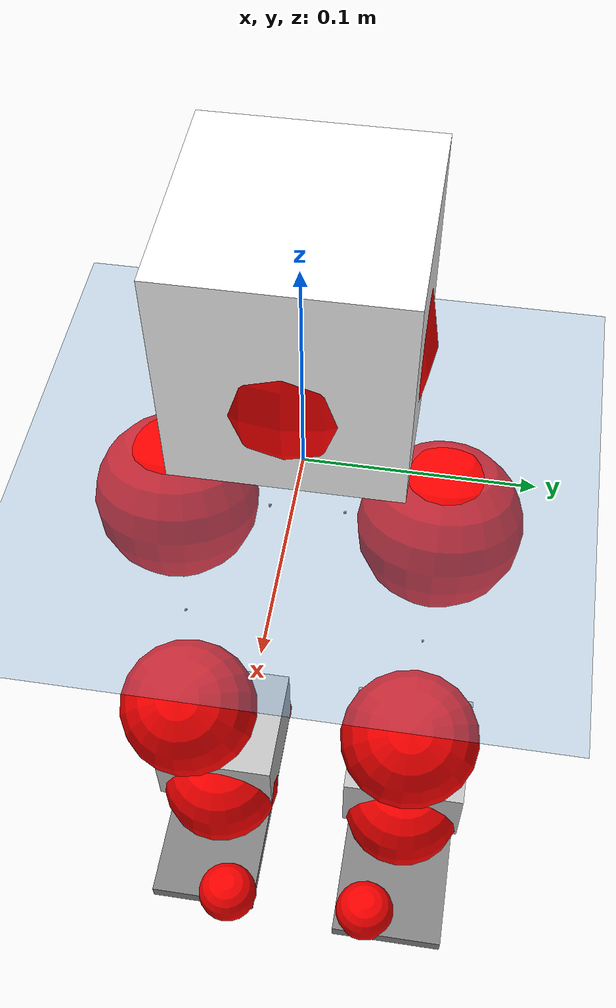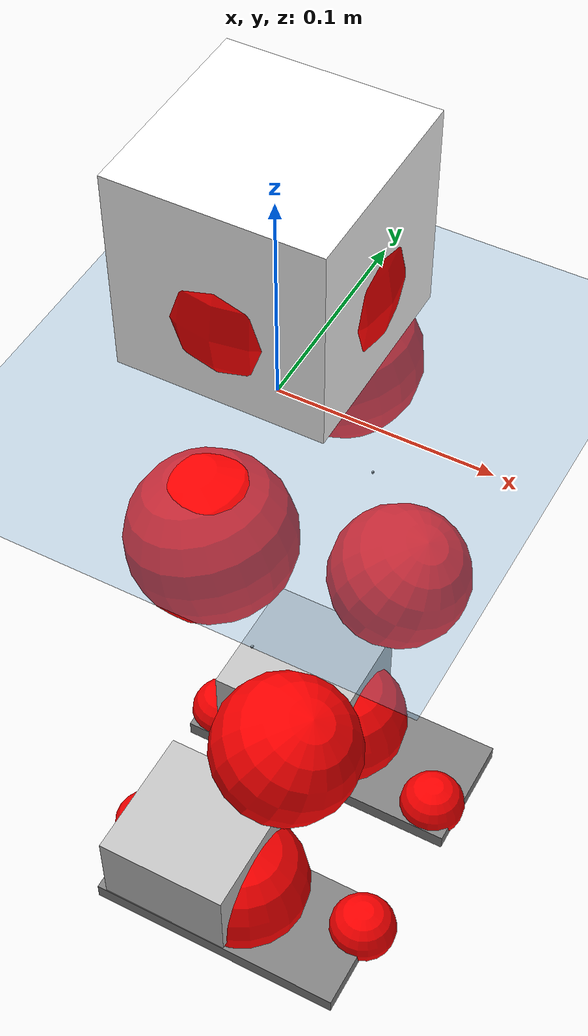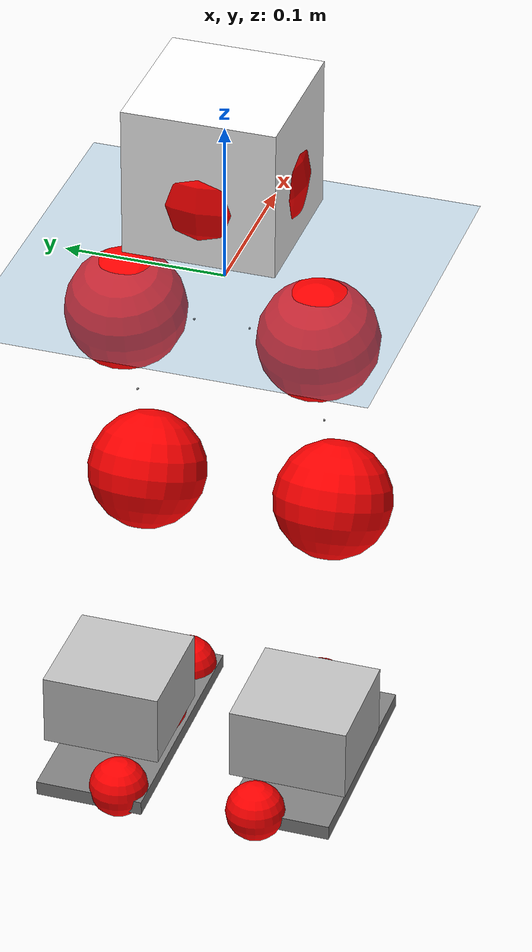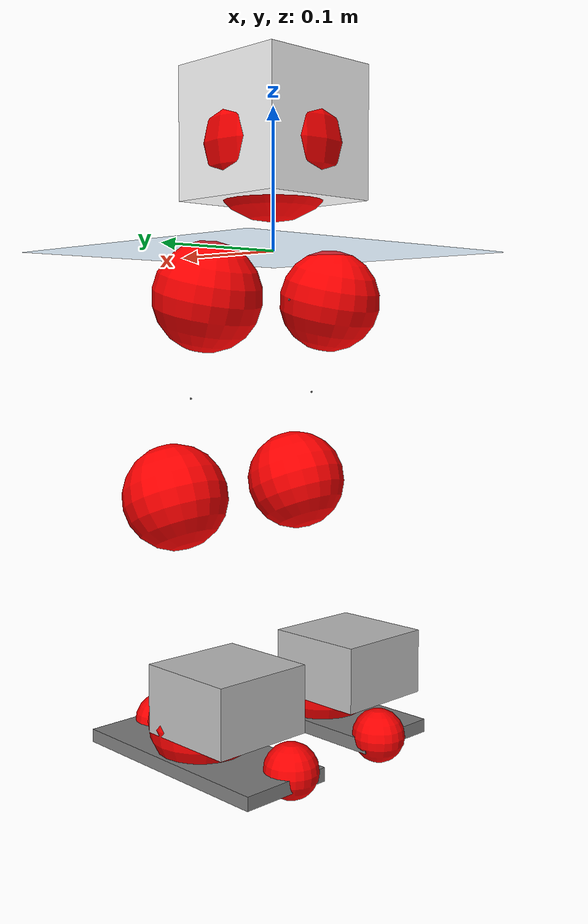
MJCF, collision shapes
<mujoco model="pi_12dof_release_v1">
  <compiler angle="radian" assetdir="assets" balanceinertia="true" inertiafromgeom="false"/>

  <option timestep="0.005" density="1.2" viscosity="2e-05"/>

  <size nkey="1"/>

  <visual>
    <quality shadowsize="8192"/>
    <map shadowclip="0.5"/>
  </visual>

  <default>
    <default class="/">
      <joint armature="0.01" damping="0.01" frictionloss="0.01"/>
      <geom contype="0" conaffinity="0" group="1" solref="-1000 -80"/>
      <site size="0.01 0.005 0.005" group="5"/>
      <general forcelimited="true" biastype="affine" gainprm="20" biasprm="0 -20 -0.5"/>
      <default class="foot">
        <geom size="0.0845 0.036 0.005" type="box" condim="6" group="4" priority="1" friction="0.9 0.2 0.2" solimp="0.015 1 0.005"/>
      </default>
      <default class="reward_collision_sphere">
        <geom group="5" rgba="1 0 0 1"/>
      </default>
    </default>
  </default>

  <asset>
    <texture type="skybox" colorspace="auto" name="//unnamed_texture_0" builtin="gradient" rgb1="0.95 0.95 0.95" rgb2="0.95 0.95 0.95" width="100" height="600"/>
    <texture type="2d" colorspace="auto" name="texplane" builtin="checker" rgb1="0.345 0.575 0.748" rgb2="0.345 0.575 0.748" markrgb="1 1 1" width="512" height="512"/>
    <material name="MatPlane" class="/" texture="texplane" texuniform="true" texrepeat="2 2" specular="0.9"/>
    <mesh name="baselink_1" class="/" file="baselink_1.STL"/>
    <mesh name="r_hip_pitch_link" class="/" file="r_hip_pitch_link.STL"/>
    <mesh name="r_hip_roll_link" class="/" file="r_hip_roll_link.STL"/>
    <mesh name="r_thigh_link" class="/" file="r_thigh_link.STL"/>
    <mesh name="r_calf_link" class="/" file="r_calf_link.STL"/>
    <mesh name="r_ankle_pitch_link" class="/" file="r_ankle_pitch_link.STL"/>
    <mesh name="r_ankle_roll_link" class="/" file="r_ankle_roll_link.STL"/>
    <mesh name="l_hip_pitch_link" class="/" file="l_hip_pitch_link.STL"/>
    <mesh name="l_hip_roll_link" class="/" file="l_hip_roll_link.STL"/>
    <mesh name="l_thigh_link" class="/" file="l_thigh_link.STL"/>
    <mesh name="l_calf_link" class="/" file="l_calf_link.STL"/>
    <mesh name="l_ankle_pitch_link" class="/" file="l_ankle_pitch_link.STL"/>
    <mesh name="l_ankle_roll_link" class="/" file="l_ankle_roll_link.STL"/>
  </asset>

  <worldbody>
    <geom name="floor" class="/" size="100 100 0.125" type="plane" group="0" material="MatPlane"/>
    <light name="toplight_shadow" class="/" pos="0 0 5" dir="0.0990148 0.0990148 -0.990148" type="directional" ambient="0.04 0.04 0.04" diffuse="0.55 0.55 0.55" specular="0.12 0.12 0.12"/>
    <light name="toplight_fill" class="/" pos="0 0 5" dir="0.0990148 0.0990148 -0.990148" type="directional" castshadow="false" ambient="0.04 0.04 0.04" diffuse="0.3 0.3 0.3" specular="0.08 0.08 0.08"/>
    <body name="trunk" pos="-0.000694832 0.000783755 0.000347841" quat="1 6.72356e-05 9.86594e-05 0.000115652">
      <inertial pos="0.00134546 -0.000534721 0.0408567" quat="0.694259 0.0098625 0.00976321 0.719592" mass="1.76927" diaginertia="0.0103825 0.00259158 0.00444705"/>
      <joint name="//unnamed_joint_0" type="free"/>
      <geom name="//unnamed_geom_1" class="/" type="mesh" density="0" rgba="1 1 1 1" mesh="baselink_1"/>
      <geom name="//unnamed_geom_2" class="/" size="0.0467826 0.0467826 0.0467826" pos="0 0 0.0810873" type="box" rgba="1 1 1 1"/>
      <geom name="//unnamed_geom_3" class="reward_collision_sphere" size="0.0514609" pos="0 0 0.0709514"/>
      <site name="imu" class="/" pos="-0.000227352 -0.000957168 -0.00163314" size="0.00935652"/>
      <camera name="track" class="/" pos="0 -1.56039 0" quat="0.707107 0.707107 0 0" mode="trackcom"/>
      <camera name="ego_camera" class="/" pos="0.0759876 0 0.182446" quat="-0.5 -0.5 0.5 0.5"/>
      <body name="r_hip_pitch_link" pos="0.000561458 -0.0164613 -0.0341231" quat="0.992216 0.000121171 -0.124529 -8.12454e-05">
        <inertial pos="5.50514e-05 -0.0429733 0.000809847" quat="-0.0188482 0.704915 -0.0287091 0.70846" mass="0.302478" diaginertia="0.000115377 2.82012e-05 8.79121e-05"/>
        <joint name="r_hip_pitch_joint" class="/" pos="0 0 0" axis="-0.002067 -0.999977 -0.00648391" range="-1.74883 1.25132" armature="0.00931412" damping="0.0141317" frictionloss="0.00900827"/>
        <geom name="//unnamed_geom_4" class="/" type="mesh" density="0" rgba="0.75294 0.75294 0.75294 1" mesh="r_hip_pitch_link"/>
        <geom name="//unnamed_geom_5" class="/" size="0.000467826 0.000467826 0.000467826" type="box" rgba="0.75294 0.75294 0.75294 1"/>
        <body name="r_hip_roll_link" pos="0.00058551 -0.0427762 -0.000113615" quat="1 2.37699e-06 -5.51351e-06 4.06896e-06">
          <inertial pos="-0.000215689 -0.000292066 -0.0625352" quat="0.70694 -0.07917 -0.0820119 0.698027" mass="0.316745" diaginertia="0.000357737 8.08018e-05 0.000138014"/>
          <joint name="r_hip_roll_joint" class="/" pos="0 0 0" axis="-1 -0.000311252 -0.000224255" range="-0.115199 0.481768" armature="0.00920536" damping="0.00767871" frictionloss="0.00929271"/>
          <geom name="//unnamed_geom_6" class="/" type="mesh" density="0" rgba="0.75294 0.75294 0.75294 1" mesh="r_hip_roll_link"/>
          <geom name="//unnamed_geom_7" class="/" size="0.000467826 0.000467826 0.000467826" type="box" rgba="0.75294 0.75294 0.75294 1"/>
          <geom name="//unnamed_geom_8" class="reward_collision_sphere" size="0.0374261"/>
          <body name="r_thigh_link" pos="-5.64959e-05 0.000921854 -0.0700437" quat="1 -0.000236301 0.000447386 -6.80176e-05">
            <inertial pos="-0.000410859 0.000327086 -0.0476117" quat="0.737527 0.675317 0.000141435 -0.000261806" mass="0.0926441" diaginertia="0.000133349 2.70819e-05 6.26397e-05"/>
            <joint name="r_thigh_joint" class="/" pos="0 0 0" axis="0.00199937 0.00411425 -0.99999" range="-0.303642 0.57457" armature="0.00933266" damping="0.00298503" frictionloss="0.00950436"/>
            <geom name="//unnamed_geom_9" class="/" type="mesh" density="0" rgba="0.75294 0.75294 0.75294 1" mesh="r_thigh_link"/>
            <geom name="//unnamed_geom_10" class="/" size="0.000467826 0.000467826 0.000467826" type="box" rgba="0.75294 0.75294 0.75294 1"/>
            <body name="r_calf_link" pos="3.45374e-05 -0.00106553 -0.0707561" quat="0.947565 6.38398e-05 0.319562 -8.7517e-05">
              <inertial pos="-0.000892678 -0.000532943 -0.0708798" quat="0.999986 -0.00372333 -0.000536822 0.00368869" mass="0.671597" diaginertia="0.00370538 0.00099521 0.000186979"/>
              <joint name="r_calf_joint" class="/" pos="0 0 0" axis="-0.00132751 -0.999999 -4.06981e-05" range="-1.64542 0.64773" armature="0.00993297" damping="0" frictionloss="0.0098518"/>
              <geom name="//unnamed_geom_11" class="/" type="mesh" density="0" rgba="0.75294 0.75294 0.75294 1" mesh="r_calf_link"/>
              <geom name="//unnamed_geom_12" class="/" size="0.000467826 0.000467826 0.000467826" type="box" rgba="0.75294 0.75294 0.75294 1"/>
              <geom name="//unnamed_geom_13" class="reward_collision_sphere" size="0.0374261"/>
              <body name="r_ankle_pitch_link" pos="0.000697942 -0.00025152 -0.142052" quat="0.980121 -0.000267519 -0.198399 2.1374e-05">
                <inertial pos="0.0055924 0.00172052 -0.000471161" quat="0.00157481 0.70645 -0.0026564 0.707756" mass="0.142465" diaginertia="0.000329821 6.47268e-05 0.000129062"/>
                <joint name="r_ankle_pitch_joint" class="/" pos="0 0 0" axis="-0.00266908 -0.999979 0.0059695" range="-1.29085 0.491613" armature="0.0091123" damping="0.00843588" frictionloss="0.00974598"/>
                <geom name="//unnamed_geom_14" class="/" type="mesh" density="0" rgba="0.75294 0.75294 0.75294 1" mesh="r_ankle_pitch_link"/>
                <geom name="//unnamed_geom_15" class="/" size="0.0364904 0.0374261 0.0233913" type="box" rgba="0.75294 0.75294 0.75294 1"/>
                <body name="r_ankle_roll_link" pos="0.0765709 0.00192045 -0.000142733" quat="1 0.000122192 2.34303e-05 2.56502e-05">
                  <inertial pos="-0.0254009 0.000150926 -0.0150817" quat="0.55982 0.431797 0.433858 0.558498" mass="0.425366" diaginertia="0.00120293 0.000299826 0.000301081"/>
                  <joint name="r_ankle_roll_joint" class="/" pos="0 0 0" axis="-0.999966 -0.00609579 0.00555172" range="-0.14779 0.155571" armature="0.00961292" damping="0.00813725" frictionloss="0.00943925"/>
                  <geom name="//unnamed_geom_16" class="/" type="mesh" density="0" rgba="0.75294 0.75294 0.75294 1" mesh="r_ankle_roll_link"/>
                  <geom name="//unnamed_geom_17" class="/" type="mesh" rgba="0.75294 0.75294 0.75294 1" mesh="r_ankle_roll_link"/>
                  <geom name="right_foot" class="foot" size="0.0727385 0.0326989 0.00473295" pos="-0.0516716 0 -0.044598"/>
                  <geom name="//unnamed_geom_19" class="reward_collision_sphere" size="0.0374261" pos="-0.0506584 0 -0.0202718"/>
                  <geom name="//unnamed_geom_20" class="reward_collision_sphere" size="0.018713" pos="0.0151975 0.0156039 -0.0405437"/>
                  <geom name="//unnamed_geom_21" class="reward_collision_sphere" size="0.018713" pos="-0.12158 0.0156039 -0.0405437"/>
                  <site name="right_foot" class="foot" pos="-0.0516716 0 -0.044598" size="0.00935652"/>
                </body>
              </body>
            </body>
          </body>
        </body>
      </body>
      <body name="l_hip_pitch_link" pos="-0.000359898 0.0180043 -0.0337435" quat="0.992213 -0.000453824 -0.124551 0.000616003">
        <inertial pos="0.00156227 0.041609 -0.000350714" quat="-0.038341 0.705647 0.0294726 0.706911" mass="0.32" diaginertia="0.000136482 3.00187e-05 0.000106833"/>
        <joint name="l_hip_pitch_joint" class="/" pos="0 0 0" axis="4.99151e-05 1 2.80788e-05" stiffness="0.00213857" range="-1.26578 1.74841" armature="0.00910649" damping="0.00564165" frictionloss="0.00911974"/>
        <geom name="//unnamed_geom_22" class="/" type="mesh" density="0" rgba="0.75294 0.75294 0.75294 1" mesh="l_hip_pitch_link"/>
        <geom name="//unnamed_geom_23" class="/" size="0.000467826 0.000467826 0.000467826" type="box" rgba="0.75294 0.75294 0.75294 1"/>
        <body name="l_hip_roll_link" pos="0.000146144 0.043108 -0.000414774" quat="1 -2.04614e-05 -0.000192422 0.000104845">
          <inertial pos="-0.00134959 -4.66321e-05 -0.0625794" quat="0.699124 -0.0754296 -0.0779341 0.706726" mass="0.318999" diaginertia="0.000356979 8.0729e-05 0.000137489"/>
          <joint name="l_hip_roll_joint" class="/" pos="0 0 0" axis="-0.999994 -0.00338401 0.00105181" range="-0.503043 0.124566" armature="0.0090388" damping="0" frictionloss="0.00898461"/>
          <geom name="//unnamed_geom_24" class="/" type="mesh" density="0" rgba="0.75294 0.75294 0.75294 1" mesh="l_hip_roll_link"/>
          <geom name="//unnamed_geom_25" class="/" size="0.000467826 0.000467826 0.000467826" type="box" rgba="0.75294 0.75294 0.75294 1"/>
          <geom name="//unnamed_geom_26" class="reward_collision_sphere" size="0.0374261"/>
          <body name="l_thigh_link" pos="0.000548062 -0.0004518 -0.0711207" quat="1 4.275e-05 9.39009e-05 -6.99686e-05">
            <inertial pos="0.000485167 -0.00141167 -0.0493519" quat="0.675375 0.737474 -0.000121584 -1.20387e-05" mass="0.0922616" diaginertia="0.000133731 2.73428e-05 6.2286e-05"/>
            <joint name="l_thigh_joint" class="/" pos="0 0 0" axis="0.0021085 -0.000134955 -0.999998" stiffness="0.00027346" range="-0.59883 0.288716" armature="0.00981534" damping="0.00394895" frictionloss="0.00924445"/>
            <geom name="//unnamed_geom_27" class="/" type="mesh" density="0" rgba="0.75294 0.75294 0.75294 1" mesh="l_thigh_link"/>
            <geom name="//unnamed_geom_28" class="/" size="0.000467826 0.000467826 0.000467826" type="box" rgba="0.75294 0.75294 0.75294 1"/>
            <body name="l_calf_link" pos="-0.000397086 0.000294481 -0.0717001" quat="0.947633 0.000299036 0.319361 -1.21501e-05">
              <inertial pos="0.000314195 0.00167739 -0.0712054" quat="0.999991 0.0019949 -0.000127819 0.00384037" mass="0.665063" diaginertia="0.00370972 0.000998518 0.000187364"/>
              <joint name="l_calf_joint" class="/" pos="0 0 0" axis="0.00148419 0.999998 0.00139599" stiffness="0.00156487" range="-0.659808 1.65781" armature="0.00896464" damping="0.00797835" frictionloss="0.00971839"/>
              <geom name="//unnamed_geom_29" class="/" type="mesh" density="0" rgba="0.75294 0.75294 0.75294 1" mesh="l_calf_link"/>
              <geom name="//unnamed_geom_30" class="/" size="0.000467826 0.000467826 0.000467826" type="box" rgba="0.75294 0.75294 0.75294 1"/>
              <geom name="//unnamed_geom_31" class="reward_collision_sphere" size="0.0374261"/>
              <body name="l_ankle_pitch_link" pos="0.000361311 0.0010276 -0.141531" quat="0.980092 -0.000139817 -0.198542 0.000192774">
                <inertial pos="0.00482975 9.58295e-05 -8.02964e-05" quat="-0.0020759 0.707008 0.00200342 0.707199" mass="0.145898" diaginertia="0.000331428 6.42732e-05 0.000128109"/>
                <joint name="l_ankle_pitch_joint" class="/" pos="0 0 0" axis="-0.000426968 0.999998 -0.00200884" range="-0.514703 1.30429" armature="0.00938899" damping="0.00659591" frictionloss="0.0091083"/>
                <geom name="//unnamed_geom_32" class="/" type="mesh" density="0" rgba="0.75294 0.75294 0.75294 1" mesh="l_ankle_pitch_link"/>
                <geom name="//unnamed_geom_33" class="/" size="0.0364904 0.0374261 0.0233913" type="box" rgba="0.75294 0.75294 0.75294 1"/>
                <body name="l_ankle_roll_link" pos="0.0753595 0.000663444 0.000134636" quat="1 0.000198469 2.34746e-05 3.72293e-05">
                  <inertial pos="-0.023887 3.46079e-06 -0.0156009" quat="0.559774 0.431737 0.434816 0.557846" mass="0.425863" diaginertia="0.00118206 0.000297616 0.000296653"/>
                  <joint name="l_ankle_roll_joint" class="/" pos="0 0 0" axis="-1 0.000126126 0.000944292" range="-0.157881 0.153588" armature="0.00920913" damping="0.00318794" frictionloss="0.00955234"/>
                  <geom name="//unnamed_geom_34" class="/" type="mesh" density="0" rgba="0.75294 0.75294 0.75294 1" mesh="l_ankle_roll_link"/>
                  <geom name="//unnamed_geom_35" class="/" type="mesh" rgba="0.75294 0.75294 0.75294 1" mesh="l_ankle_roll_link"/>
                  <geom name="left_foot" class="foot" size="0.0821219 0.0344117 0.00464776" pos="-0.0516716 0 -0.044598"/>
                  <geom name="//unnamed_geom_37" class="reward_collision_sphere" size="0.0374261" pos="-0.0506584 0 -0.0202718"/>
                  <geom name="//unnamed_geom_38" class="reward_collision_sphere" size="0.018713" pos="0.0151975 -0.0156039 -0.0405437"/>
                  <geom name="//unnamed_geom_39" class="reward_collision_sphere" size="0.018713" pos="-0.12158 -0.0156039 -0.0405437"/>
                  <site name="left_foot" class="foot" pos="-0.0516716 0 -0.044598" size="0.00935652"/>
                </body>
              </body>
            </body>
          </body>
        </body>
      </body>
    </body>
  </worldbody>

  <contact>
    <pair class="/" geom1="floor" geom2="right_foot" name="//unnamed_contact_1"/>
    <pair class="/" geom1="floor" geom2="left_foot" name="//unnamed_contact_0"/>
  </contact>

  <actuator>
    <general name="r_hip_pitch_joint" class="/" joint="r_hip_pitch_joint" forcerange="-19.3004 19.3004" gainprm="18.9353" biasprm="0 -18.9353 -0.479306"/>
    <general name="r_hip_roll_joint" class="/" joint="r_hip_roll_joint" forcerange="-19.5922 19.5922" gainprm="18.9353" biasprm="0 -18.9353 -0.479306"/>
    <general name="r_thigh_joint" class="/" joint="r_thigh_joint" forcerange="-19.7848 19.7848" gainprm="18.9353" biasprm="0 -18.9353 -0.479306"/>
    <general name="r_calf_joint" class="/" joint="r_calf_joint" forcerange="-19.2779 19.2779" gainprm="18.9353" biasprm="0 -18.9353 -0.479306"/>
    <general name="r_ankle_pitch_joint" class="/" joint="r_ankle_pitch_joint" forcerange="-19.9963 19.9963" gainprm="18.9353" biasprm="0 -18.9353 -0.479306"/>
    <general name="r_ankle_roll_joint" class="/" joint="r_ankle_roll_joint" forcerange="-19.2582 19.2582" gainprm="18.9353" biasprm="0 -18.9353 -0.479306"/>
    <general name="l_hip_pitch_joint" class="/" joint="l_hip_pitch_joint" forcerange="-19.837 19.837" gainprm="18.9353" biasprm="0 -18.9353 -0.479306"/>
    <general name="l_hip_roll_joint" class="/" joint="l_hip_roll_joint" forcerange="-20.2777 20.2777" gainprm="18.9353" biasprm="0 -18.9353 -0.479306"/>
    <general name="l_thigh_joint" class="/" joint="l_thigh_joint" forcerange="-19.6722 19.6722" gainprm="18.9353" biasprm="0 -18.9353 -0.479306"/>
    <general name="l_calf_joint" class="/" joint="l_calf_joint" forcerange="-20.4445 20.4445" gainprm="18.9353" biasprm="0 -18.9353 -0.479306"/>
    <general name="l_ankle_pitch_joint" class="/" joint="l_ankle_pitch_joint" forcerange="-19.5803 19.5803" gainprm="18.9353" biasprm="0 -18.9353 -0.479306"/>
    <general name="l_ankle_roll_joint" class="/" joint="l_ankle_roll_joint" forcerange="-20.0883 20.0883" gainprm="18.9353" biasprm="0 -18.9353 -0.479306"/>
  </actuator>

  <sensor>
    <gyro site="imu" name="imu_angular_velocity"/>
    <velocimeter site="imu" name="imu_linear_velocity"/>
    <framelinvel objtype="site" objname="left_foot" name="left_foot_global_linear_velocity"/>
    <framelinvel objtype="site" objname="right_foot" name="right_foot_global_linear_velocity"/>
  </sensor>

  <keyframe>
    <key name="home" qpos="0 0 0.291 1 0 0 0 0.4 0 0 -0.8 0.4 0 -0.4 0 0 0.8 -0.4 0"/>
  </keyframe>
</mujoco>
